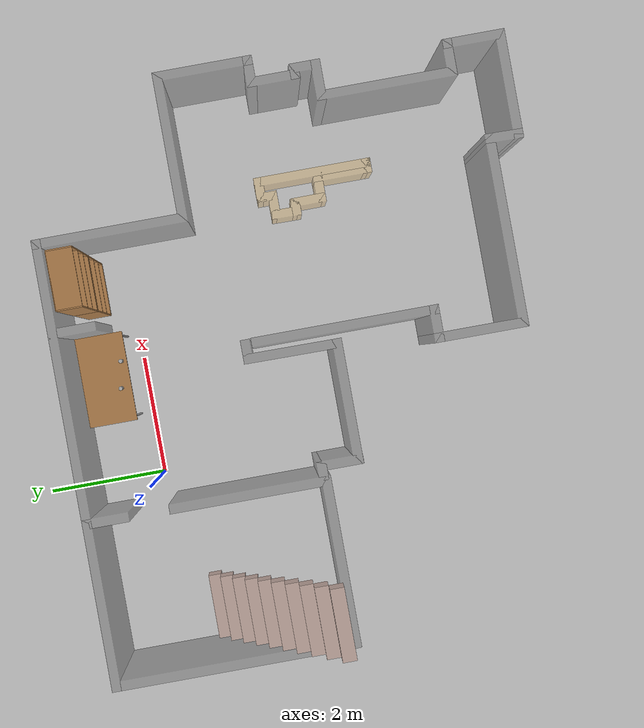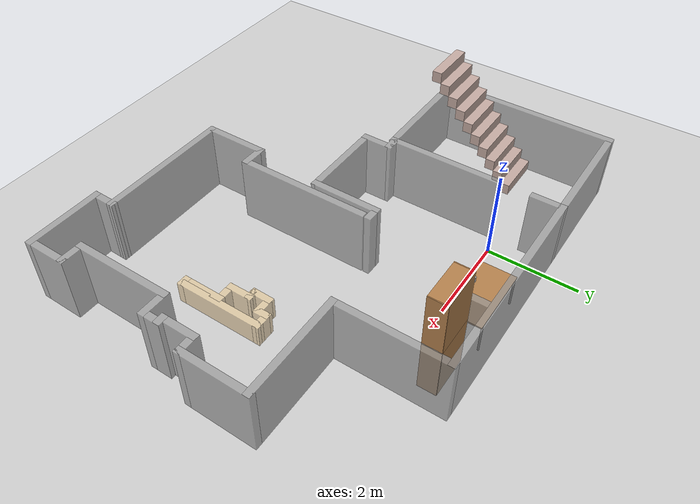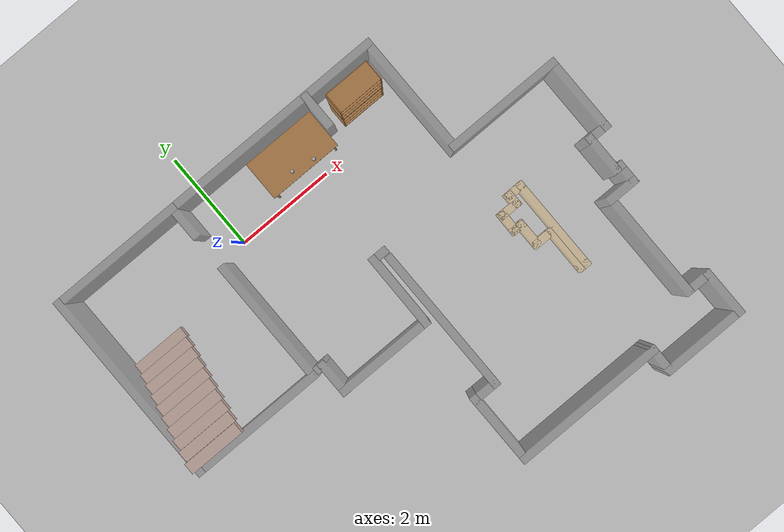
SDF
<sdf version="1.4">
 <world name="default">
  <model name="ground_plane">
   <static>1</static>
   <link name="link">
    <collision name="collision">
     <geometry><plane><normal>0 0 1</normal><size>100 100</size></plane></geometry>
     <surface><friction><ode><mu>100</mu><mu2>50</mu2></ode></friction></surface>
    </collision>
    <visual name="visual">
     <cast_shadows>0</cast_shadows>
     <geometry><plane><normal>0 0 1</normal><size>100 100</size></plane></geometry>
     <material>
      <script><uri>file://media/materials/scripts/gazebo.material</uri><name>Gazebo/Grey</name></script>
     </material>
    </visual>
    <velocity_decay><linear>0</linear><angular>0</angular></velocity_decay>
   </link>
  </model>
  <light name="sun" type="directional">
   <pose>0 0 10 0 -0 0</pose>
   <diffuse>0.8 0.8 0.8 1</diffuse>
   <specular>0.2 0.2 0.2 1</specular>
   <attenuation>
    <range>1000</range>
    <constant>0.9</constant>
    <linear>0.01</linear>
    <quadratic>0.001</quadratic>
   </attenuation>
   <direction>-0.5 0.1 -0.9</direction>
  </light>
  <model name="amtc">
   <pose>1.61504 -2.73191 0 0 -0 0</pose>
   <link name="Stairs_1">
    <visual name="Stairs_1_Visual_0">
     <pose>-4.04222 2.18385 0.125 0 -0 0</pose>
     <geometry><box><size>1.09 0.217 0.25</size></box></geometry>
     <material>
      <script><uri>file://media/materials/scripts/gazebo.material</uri><name>Gazebo/Grey</name></script>
      <ambient>0.760784 0.662745 0.627451 1</ambient>
     </material>
    </visual>
    <collision name="Stairs_1_Collision_0">
     <geometry><box><size>1.09 0.217 0.25</size></box></geometry>
     <pose>-4.04222 2.18385 0.125 0 -0 0</pose>
    </collision>
    <visual name="Stairs_1_Visual_1">
     <pose>-4.04222 1.96685 0.375 0 -0 0</pose>
     <geometry><box><size>1.09 0.217 0.25</size></box></geometry>
     <material>
      <script><uri>file://media/materials/scripts/gazebo.material</uri><name>Gazebo/Grey</name></script>
      <ambient>0.760784 0.662745 0.627451 1</ambient>
     </material>
    </visual>
    <collision name="Stairs_1_Collision_1">
     <geometry><box><size>1.09 0.217 0.25</size></box></geometry>
     <pose>-4.04222 1.96685 0.375 0 -0 0</pose>
    </collision>
    <visual name="Stairs_1_Visual_2">
     <pose>-4.04222 1.74985 0.625 0 -0 0</pose>
     <geometry><box><size>1.09 0.217 0.25</size></box></geometry>
     <material>
      <script><uri>file://media/materials/scripts/gazebo.material</uri><name>Gazebo/Grey</name></script>
      <ambient>0.760784 0.662745 0.627451 1</ambient>
     </material>
    </visual>
    <collision name="Stairs_1_Collision_2">
     <geometry><box><size>1.09 0.217 0.25</size></box></geometry>
     <pose>-4.04222 1.74985 0.625 0 -0 0</pose>
    </collision>
    <visual name="Stairs_1_Visual_3">
     <pose>-4.04222 1.53285 0.875 0 -0 0</pose>
     <geometry><box><size>1.09 0.217 0.25</size></box></geometry>
     <material>
      <script><uri>file://media/materials/scripts/gazebo.material</uri><name>Gazebo/Grey</name></script>
      <ambient>0.760784 0.662745 0.627451 1</ambient>
     </material>
    </visual>
    <collision name="Stairs_1_Collision_3">
     <geometry><box><size>1.09 0.217 0.25</size></box></geometry>
     <pose>-4.04222 1.53285 0.875 0 -0 0</pose>
    </collision>
    <visual name="Stairs_1_Visual_4">
     <pose>-4.04222 1.31585 1.125 0 -0 0</pose>
     <geometry><box><size>1.09 0.217 0.25</size></box></geometry>
     <material>
      <script><uri>file://media/materials/scripts/gazebo.material</uri><name>Gazebo/Grey</name></script>
      <ambient>0.760784 0.662745 0.627451 1</ambient>
     </material>
    </visual>
    <collision name="Stairs_1_Collision_4">
     <geometry><box><size>1.09 0.217 0.25</size></box></geometry>
     <pose>-4.04222 1.31585 1.125 0 -0 0</pose>
    </collision>
    <visual name="Stairs_1_Visual_5">
     <pose>-4.04222 1.09885 1.375 0 -0 0</pose>
     <geometry><box><size>1.09 0.217 0.25</size></box></geometry>
     <material>
      <script><uri>file://media/materials/scripts/gazebo.material</uri><name>Gazebo/Grey</name></script>
      <ambient>0.760784 0.662745 0.627451 1</ambient>
     </material>
    </visual>
    <collision name="Stairs_1_Collision_5">
     <geometry><box><size>1.09 0.217 0.25</size></box></geometry>
     <pose>-4.04222 1.09885 1.375 0 -0 0</pose>
    </collision>
    <visual name="Stairs_1_Visual_6">
     <pose>-4.04222 0.88185 1.625 0 -0 0</pose>
     <geometry><box><size>1.09 0.217 0.25</size></box></geometry>
     <material>
      <script><uri>file://media/materials/scripts/gazebo.material</uri><name>Gazebo/Grey</name></script>
      <ambient>0.760784 0.662745 0.627451 1</ambient>
     </material>
    </visual>
    <collision name="Stairs_1_Collision_6">
     <geometry><box><size>1.09 0.217 0.25</size></box></geometry>
     <pose>-4.04222 0.88185 1.625 0 -0 0</pose>
    </collision>
    <visual name="Stairs_1_Visual_7">
     <pose>-4.04222 0.66485 1.875 0 -0 0</pose>
     <geometry><box><size>1.09 0.217 0.25</size></box></geometry>
     <material>
      <script><uri>file://media/materials/scripts/gazebo.material</uri><name>Gazebo/Grey</name></script>
      <ambient>0.760784 0.662745 0.627451 1</ambient>
     </material>
    </visual>
    <collision name="Stairs_1_Collision_7">
     <geometry><box><size>1.09 0.217 0.25</size></box></geometry>
     <pose>-4.04222 0.66485 1.875 0 -0 0</pose>
    </collision>
    <visual name="Stairs_1_Visual_8">
     <pose>-4.04222 0.44785 2.125 0 -0 0</pose>
     <geometry><box><size>1.09 0.217 0.25</size></box></geometry>
     <material>
      <script><uri>file://media/materials/scripts/gazebo.material</uri><name>Gazebo/Grey</name></script>
      <ambient>0.760784 0.662745 0.627451 1</ambient>
     </material>
    </visual>
    <collision name="Stairs_1_Collision_8">
     <geometry><box><size>1.09 0.217 0.25</size></box></geometry>
     <pose>-4.04222 0.44785 2.125 0 -0 0</pose>
    </collision>
    <visual name="Stairs_1_Visual_9">
     <pose>-4.04222 0.23085 2.375 0 -0 0</pose>
     <geometry><box><size>1.09 0.217 0.25</size></box></geometry>
     <material>
      <script><uri>file://media/materials/scripts/gazebo.material</uri><name>Gazebo/Grey</name></script>
      <ambient>0.760784 0.662745 0.627451 1</ambient>
     </material>
    </visual>
    <collision name="Stairs_1_Collision_9">
     <geometry><box><size>1.09 0.217 0.25</size></box></geometry>
     <pose>-4.04222 0.23085 2.375 0 -0 0</pose>
    </collision>
    <velocity_decay><linear>0</linear><angular>0</angular></velocity_decay>
   </link>
   <link name="Wall_0">
    <collision name="Wall_0_Collision">
     <geometry><box><size>4 0.15 1.5</size></box></geometry>
     <pose>0 0 0.75 0 -0 0</pose>
    </collision>
    <visual name="Wall_0_Visual">
     <transparency>0.3</transparency>
     <pose>0 0 0.75 0 -0 0</pose>
     <geometry><box><size>4 0.15 1.5</size></box></geometry>
     <material>
      <script><uri>file://media/materials/scripts/gazebo.material</uri><name>Gazebo/Grey</name></script>
      <ambient>1 1 1 1</ambient>
     </material>
    </visual>
    <pose>-4.67488 1.97557 0 0 0 -1.5708</pose>
    <velocity_decay><linear>0</linear><angular>0</angular></velocity_decay>
   </link>
   <link name="Wall_1">
    <collision name="Wall_1_Collision">
     <geometry><box><size>2.75031 0.15 1.5</size></box></geometry>
     <pose>0 0 0.75 0 -0 0</pose>
    </collision>
    <visual name="Wall_1_Visual">
     <transparency>0.3</transparency>
     <pose>0 0 0.75 0 -0 0</pose>
     <geometry><box><size>2.75031 0.15 1.5</size></box></geometry>
     <material>
      <script><uri>file://media/materials/scripts/gazebo.material</uri><name>Gazebo/Grey</name></script>
      <ambient>1 1 1 1</ambient>
     </material>
    </visual>
    <pose>-3.37488 0.052065 0 0 -0 0.001154</pose>
    <velocity_decay><linear>0</linear><angular>0</angular></velocity_decay>
   </link>
   <link name="Wall_10">
    <collision name="Wall_10_Collision">
     <geometry><box><size>2.41 0.15 1.5</size></box></geometry>
     <pose>0 0 0.75 0 -0 0</pose>
    </collision>
    <visual name="Wall_10_Visual">
     <transparency>0.3</transparency>
     <pose>0 0 0.75 0 -0 0</pose>
     <geometry><box><size>2.41 0.15 1.5</size></box></geometry>
     <material>
      <script><uri>file://media/materials/scripts/gazebo.material</uri><name>Gazebo/Grey</name></script>
      <ambient>1 1 1 1</ambient>
     </material>
    </visual>
    <pose>3.54512 1.55056 0 0 -0 0</pose>
    <velocity_decay><linear>0</linear><angular>0</angular></velocity_decay>
   </link>
   <link name="Wall_12">
    <collision name="Wall_12_Collision">
     <geometry><box><size>1.6 0.15 1.5</size></box></geometry>
     <pose>0 0 0.75 0 -0 0</pose>
    </collision>
    <visual name="Wall_12_Visual">
     <transparency>0.3</transparency>
     <pose>0 0 0.75 0 -0 0</pose>
     <geometry><box><size>1.6 0.15 1.5</size></box></geometry>
     <material>
      <script><uri>file://media/materials/scripts/gazebo.material</uri><name>Gazebo/Grey</name></script>
      <ambient>1 1 1 1</ambient>
     </material>
    </visual>
    <pose>4.67512 0.825565 0 0 0 -1.5708</pose>
    <velocity_decay><linear>0</linear><angular>0</angular></velocity_decay>
   </link>
   <link name="Wall_14">
    <collision name="Wall_14_Collision">
     <geometry><box><size>0.5 0.15 1.5</size></box></geometry>
     <pose>0 0 0.75 0 -0 0</pose>
    </collision>
    <visual name="Wall_14_Visual">
     <transparency>0.3</transparency>
     <pose>0 0 0.75 0 -0 0</pose>
     <geometry><box><size>0.5 0.15 1.5</size></box></geometry>
     <material>
      <script><uri>file://media/materials/scripts/gazebo.material</uri><name>Gazebo/Grey</name></script>
      <ambient>1 1 1 1</ambient>
     </material>
    </visual>
    <pose>4.50012 0.100565 0 0 -0 3.14159</pose>
    <velocity_decay><linear>0</linear><angular>0</angular></velocity_decay>
   </link>
   <link name="Wall_15">
    <collision name="Wall_15_Collision">
     <geometry><box><size>0.85 0.15 1.5</size></box></geometry>
     <pose>0 0 0.75 0 -0 0</pose>
    </collision>
    <visual name="Wall_15_Visual">
     <transparency>0.3</transparency>
     <pose>0 0 0.75 0 -0 0</pose>
     <geometry><box><size>0.85 0.15 1.5</size></box></geometry>
     <material>
      <script><uri>file://media/materials/scripts/gazebo.material</uri><name>Gazebo/Grey</name></script>
      <ambient>1 1 1 1</ambient>
     </material>
    </visual>
    <pose>4.32512 -0.249435 0 0 0 -1.5708</pose>
    <velocity_decay><linear>0</linear><angular>0</angular></velocity_decay>
   </link>
   <link name="Wall_17">
    <collision name="Wall_17_Collision">
     <geometry><box><size>0.25 0.15 1.5</size></box></geometry>
     <pose>0 0 0.75 0 -0 0</pose>
    </collision>
    <visual name="Wall_17_Visual">
     <transparency>0.3</transparency>
     <pose>0 0 0.75 0 -0 0</pose>
     <geometry><box><size>0.25 0.15 1.5</size></box></geometry>
     <material>
      <script><uri>file://media/materials/scripts/gazebo.material</uri><name>Gazebo/Grey</name></script>
      <ambient>1 1 1 1</ambient>
     </material>
    </visual>
    <pose>4.37512 -0.599435 0 0 -0 0</pose>
    <velocity_decay><linear>0</linear><angular>0</angular></velocity_decay>
   </link>
   <link name="Wall_18">
    <collision name="Wall_18_Collision">
     <geometry><box><size>0.5 0.15 1.5</size></box></geometry>
     <pose>0 0 0.75 0 -0 0</pose>
    </collision>
    <visual name="Wall_18_Visual">
     <transparency>0.3</transparency>
     <pose>0 0 0.75 0 -0 0</pose>
     <geometry><box><size>0.5 0.15 1.5</size></box></geometry>
     <material>
      <script><uri>file://media/materials/scripts/gazebo.material</uri><name>Gazebo/Grey</name></script>
      <ambient>1 1 1 1</ambient>
     </material>
    </visual>
    <pose>4.42512 -0.774435 0 0 0 -1.5708</pose>
    <velocity_decay><linear>0</linear><angular>0</angular></velocity_decay>
   </link>
   <link name="Wall_19">
    <collision name="Wall_19_Collision">
     <geometry><box><size>0.65 0.15 1.5</size></box></geometry>
     <pose>0 0 0.75 0 -0 0</pose>
    </collision>
    <visual name="Wall_19_Visual">
     <transparency>0.3</transparency>
     <pose>0 0 0.75 0 -0 0</pose>
     <geometry><box><size>0.65 0.15 1.5</size></box></geometry>
     <material>
      <script><uri>file://media/materials/scripts/gazebo.material</uri><name>Gazebo/Grey</name></script>
      <ambient>1 1 1 1</ambient>
     </material>
    </visual>
    <pose>4.17512 -0.949435 0 0 -0 3.14159</pose>
    <velocity_decay><linear>0</linear><angular>0</angular></velocity_decay>
   </link>
   <link name="Wall_2">
    <collision name="Wall_2_Collision">
     <geometry><box><size>2.6 0.15 1.5</size></box></geometry>
     <pose>0 0 0.75 0 -0 0</pose>
    </collision>
    <visual name="Wall_2_Visual">
     <transparency>0.3</transparency>
     <pose>0 0 0.75 0 -0 0</pose>
     <geometry><box><size>2.6 0.15 1.5</size></box></geometry>
     <material>
      <script><uri>file://media/materials/scripts/gazebo.material</uri><name>Gazebo/Grey</name></script>
      <ambient>1 1 1 1</ambient>
     </material>
    </visual>
    <pose>-2.07488 1.27856 0 0 -0 1.5708</pose>
    <velocity_decay><linear>0</linear><angular>0</angular></velocity_decay>
   </link>
   <link name="Wall_21">
    <collision name="Wall_21_Collision">
     <geometry><box><size>2.25 0.15 1.5</size></box></geometry>
     <pose>0 0 0.75 0 -0 0</pose>
    </collision>
    <visual name="Wall_21_Visual">
     <transparency>0.3</transparency>
     <pose>0 0 0.75 0 -0 0</pose>
     <geometry><box><size>2.25 0.15 1.5</size></box></geometry>
     <material>
      <script><uri>file://media/materials/scripts/gazebo.material</uri><name>Gazebo/Grey</name></script>
      <ambient>1 1 1 1</ambient>
     </material>
    </visual>
    <pose>3.92512 -1.99944 0 0 0 -1.5708</pose>
    <velocity_decay><linear>0</linear><angular>0</angular></velocity_decay>
   </link>
   <link name="Wall_22">
    <collision name="Wall_22_Collision">
     <geometry><box><size>0.6 0.15 1.5</size></box></geometry>
     <pose>0 0 0.75 0 -0 0</pose>
    </collision>
    <visual name="Wall_22_Visual">
     <transparency>0.3</transparency>
     <pose>0 0 0.75 0 -0 0</pose>
     <geometry><box><size>0.6 0.15 1.5</size></box></geometry>
     <material>
      <script><uri>file://media/materials/scripts/gazebo.material</uri><name>Gazebo/Grey</name></script>
      <ambient>1 1 1 1</ambient>
     </material>
    </visual>
    <pose>4.15012 -3.04943 0 0 -0 0</pose>
    <velocity_decay><linear>0</linear><angular>0</angular></velocity_decay>
   </link>
   <link name="Wall_24">
    <collision name="Wall_24_Collision">
     <geometry><box><size>1 0.15 1.5</size></box></geometry>
     <pose>0 0 0.75 0 -0 0</pose>
    </collision>
    <visual name="Wall_24_Visual">
     <transparency>0.3</transparency>
     <pose>0 0 0.75 0 -0 0</pose>
     <geometry><box><size>1 0.15 1.5</size></box></geometry>
     <material>
      <script><uri>file://media/materials/scripts/gazebo.material</uri><name>Gazebo/Grey</name></script>
      <ambient>1 1 1 1</ambient>
     </material>
    </visual>
    <pose>4.37512 -3.47444 0 0 0 -1.5708</pose>
    <velocity_decay><linear>0</linear><angular>0</angular></velocity_decay>
   </link>
   <link name="Wall_25">
    <collision name="Wall_25_Collision">
     <geometry><box><size>1.75 0.15 1.5</size></box></geometry>
     <pose>0 0 0.75 0 -0 0</pose>
    </collision>
    <visual name="Wall_25_Visual">
     <transparency>0.3</transparency>
     <pose>0 0 0.75 0 -0 0</pose>
     <geometry><box><size>1.75 0.15 1.5</size></box></geometry>
     <material>
      <script><uri>file://media/materials/scripts/gazebo.material</uri><name>Gazebo/Grey</name></script>
      <ambient>1 1 1 1</ambient>
     </material>
    </visual>
    <pose>3.57512 -3.89943 0 0 -0 3.14159</pose>
    <velocity_decay><linear>0</linear><angular>0</angular></velocity_decay>
   </link>
   <link name="Wall_26">
    <collision name="Wall_26_Collision">
     <geometry><box><size>0.6 0.15 1.5</size></box></geometry>
     <pose>0 0 0.75 0 -0 0</pose>
    </collision>
    <visual name="Wall_26_Visual">
     <transparency>0.3</transparency>
     <pose>0 0 0.75 0 -0 0</pose>
     <geometry><box><size>0.6 0.15 1.5</size></box></geometry>
     <material>
      <script><uri>file://media/materials/scripts/gazebo.material</uri><name>Gazebo/Grey</name></script>
      <ambient>1 1 1 1</ambient>
     </material>
    </visual>
    <pose>2.77862 -3.67443 0 0 -0 1.55524</pose>
    <velocity_decay><linear>0</linear><angular>0</angular></velocity_decay>
   </link>
   <link name="Wall_28">
    <collision name="Wall_28_Collision">
     <geometry><box><size>3.1 0.15 1.5</size></box></geometry>
     <pose>0 0 0.75 0 -0 0</pose>
    </collision>
    <visual name="Wall_28_Visual">
     <transparency>0.3</transparency>
     <pose>0 0 0.75 0 -0 0</pose>
     <geometry><box><size>3.1 0.15 1.5</size></box></geometry>
     <material>
      <script><uri>file://media/materials/scripts/gazebo.material</uri><name>Gazebo/Grey</name></script>
      <ambient>1 1 1 1</ambient>
     </material>
    </visual>
    <pose>1.30712 -3.44943 0 0 -0 3.14159</pose>
    <velocity_decay><linear>0</linear><angular>0</angular></velocity_decay>
   </link>
   <link name="Wall_30">
    <collision name="Wall_30_Collision">
     <geometry><box><size>1.5 0.15 1.5</size></box></geometry>
     <pose>0 0 0.75 0 -0 0</pose>
    </collision>
    <visual name="Wall_30_Visual">
     <transparency>0.3</transparency>
     <pose>0 0 0.75 0 -0 0</pose>
     <geometry><box><size>1.5 0.15 1.5</size></box></geometry>
     <material>
      <script><uri>file://media/materials/scripts/gazebo.material</uri><name>Gazebo/Grey</name></script>
      <ambient>1 1 1 1</ambient>
     </material>
    </visual>
    <pose>-0.167881 -2.77443 0 0 -0 1.5708</pose>
    <velocity_decay><linear>0</linear><angular>0</angular></velocity_decay>
   </link>
   <link name="Wall_32">
    <collision name="Wall_32_Collision">
     <geometry><box><size>0.6 0.15 1.5</size></box></geometry>
     <pose>0 0 0.75 0 -0 0</pose>
    </collision>
    <visual name="Wall_32_Visual">
     <transparency>0.3</transparency>
     <pose>0 0 0.75 0 -0 0</pose>
     <geometry><box><size>0.6 0.15 1.5</size></box></geometry>
     <material>
      <script><uri>file://media/materials/scripts/gazebo.material</uri><name>Gazebo/Grey</name></script>
      <ambient>1 1 1 1</ambient>
     </material>
    </visual>
    <pose>0.057119 -2.09944 0 0 -0 0</pose>
    <velocity_decay><linear>0</linear><angular>0</angular></velocity_decay>
   </link>
   <link name="Wall_37">
    <collision name="Wall_37_Collision">
     <geometry><box><size>3.01 0.15 1.5</size></box></geometry>
     <pose>0 0 0.75 0 -0 0</pose>
    </collision>
    <visual name="Wall_37_Visual">
     <transparency>0.3</transparency>
     <pose>0 0 0.75 0 -0 0</pose>
     <geometry><box><size>3.01 0.15 1.5</size></box></geometry>
     <material>
      <script><uri>file://media/materials/scripts/gazebo.material</uri><name>Gazebo/Grey</name></script>
      <ambient>1 1 1 1</ambient>
     </material>
    </visual>
    <pose>0.282119 -0.669435 0 0 -0 1.5708</pose>
    <velocity_decay><linear>0</linear><angular>0</angular></velocity_decay>
   </link>
   <link name="Wall_4">
    <collision name="Wall_4_Collision">
     <geometry><box><size>2.75 0.15 1.5</size></box></geometry>
     <pose>0 0 0.75 0 -0 0</pose>
    </collision>
    <visual name="Wall_4_Visual">
     <transparency>0.3</transparency>
     <pose>0 0 0.75 0 -0 0</pose>
     <geometry><box><size>2.75 0.15 1.5</size></box></geometry>
     <material>
      <script><uri>file://media/materials/scripts/gazebo.material</uri><name>Gazebo/Grey</name></script>
      <ambient>1 1 1 1</ambient>
     </material>
    </visual>
    <pose>-3.37488 3.90056 0 0 -0 0</pose>
    <velocity_decay><linear>0</linear><angular>0</angular></velocity_decay>
   </link>
   <link name="Wall_48">
    <collision name="Wall_48_Collision">
     <pose>0.28 0 0.75 0 -0 0</pose>
     <geometry><box><size>0.25 0.15 1.5</size></box></geometry>
    </collision>
    <visual name="Wall_48_Visual">
     <transparency>0.3</transparency>
     <pose>0.28 0 0.75 0 -0 0</pose>
     <geometry><box><size>0.25 0.15 1.5</size></box></geometry>
     <material>
      <script><uri>file://media/materials/scripts/gazebo.material</uri><name>Gazebo/Grey</name></script>
      <ambient>1 1 1 1</ambient>
     </material>
    </visual>
    <pose>0.503119 0.930565 0 0 -0 3.14159</pose>
    <velocity_decay><linear>0</linear><angular>0</angular></velocity_decay>
   </link>
   <link name="Wall_49">
    <collision name="Wall_49_Collision">
     <geometry><box><size>1.58004 0.15 1.5</size></box></geometry>
     <pose>0 0 0.75 0 -0 0</pose>
    </collision>
    <visual name="Wall_49_Visual">
     <transparency>0.3</transparency>
     <pose>0 0 0.75 0 -0 0</pose>
     <geometry><box><size>1.58004 0.15 1.5</size></box></geometry>
     <material>
      <script><uri>file://media/materials/scripts/gazebo.material</uri><name>Gazebo/Grey</name></script>
      <ambient>1 1 1 1</ambient>
     </material>
    </visual>
    <pose>0.037119 0.215565 0 0 0 -1.57779</pose>
    <velocity_decay><linear>0</linear><angular>0</angular></velocity_decay>
   </link>
   <link name="Wall_5">
    <collision name="Wall_5_Collision">
     <geometry><box><size>0.75 0.15 1.5</size></box></geometry>
     <pose>0 0 0.75 0 -0 0</pose>
    </collision>
    <visual name="Wall_5_Visual">
     <transparency>0.3</transparency>
     <pose>0 0 0.75 0 -0 0</pose>
     <geometry><box><size>0.75 0.15 1.5</size></box></geometry>
     <material>
      <script><uri>file://media/materials/scripts/gazebo.material</uri><name>Gazebo/Grey</name></script>
      <ambient>1 1 1 1</ambient>
     </material>
    </visual>
    <pose>-2.07488 3.60057 0 0 0 -1.5708</pose>
    <velocity_decay><linear>0</linear><angular>0</angular></velocity_decay>
   </link>
   <link name="Wall_50">
    <collision name="Wall_50_Collision">
     <geometry><box><size>2.01321 0.15 1.5</size></box></geometry>
     <pose>0 0 0.75 0 -0 0</pose>
    </collision>
    <visual name="Wall_50_Visual">
     <transparency>0.3</transparency>
     <pose>0 0 0.75 0 -0 0</pose>
     <geometry><box><size>2.01321 0.15 1.5</size></box></geometry>
     <material>
      <script><uri>file://media/materials/scripts/gazebo.material</uri><name>Gazebo/Grey</name></script>
      <ambient>1 1 1 1</ambient>
     </material>
    </visual>
    <pose>-0.899329 -0.499435 0 0 -0 3.14159</pose>
    <velocity_decay><linear>0</linear><angular>0</angular></velocity_decay>
   </link>
   <link name="Wall_51">
    <collision name="Wall_51_Collision">
     <geometry><box><size>0.741002 0.15 1.5</size></box></geometry>
     <pose>0 0 0.75 0 -0 0</pose>
    </collision>
    <visual name="Wall_51_Visual">
     <transparency>0.3</transparency>
     <pose>0 0 0.75 0 -0 0</pose>
     <geometry><box><size>0.741002 0.15 1.5</size></box></geometry>
     <material>
      <script><uri>file://media/materials/scripts/gazebo.material</uri><name>Gazebo/Grey</name></script>
      <ambient>1 1 1 1</ambient>
     </material>
    </visual>
    <pose>-1.83083 -0.208085 0 0 -0 1.57097</pose>
    <velocity_decay><linear>0</linear><angular>0</angular></velocity_decay>
   </link>
   <link name="Wall_54">
    <collision name="Wall_54_Collision">
     <geometry><box><size>0.3 0.15 1.5</size></box></geometry>
     <pose>0 0 0.75 0 -0 0</pose>
    </collision>
    <visual name="Wall_54_Visual">
     <transparency>0.3</transparency>
     <pose>0 0 0.75 0 -0 0</pose>
     <geometry><box><size>0.3 0.15 1.5</size></box></geometry>
     <material>
      <script><uri>file://media/materials/scripts/gazebo.material</uri><name>Gazebo/Grey</name></script>
      <ambient>1 1 1 1</ambient>
     </material>
    </visual>
    <pose>-1.90588 0.087565 0 0 -0 3.14159</pose>
    <velocity_decay><linear>0</linear><angular>0</angular></velocity_decay>
   </link>
   <link name="Wall_56">
    <collision name="Wall_56_Collision">
     <geometry><box><size>0.75 0.15 1.5</size></box></geometry>
     <pose>0 0 0.75 0 -0 0</pose>
    </collision>
    <visual name="Wall_56_Visual">
     <transparency>0.3</transparency>
     <pose>0 0 0.75 0 -0 0</pose>
     <geometry><box><size>0.75 0.15 1.5</size></box></geometry>
     <material>
      <script><uri>file://media/materials/scripts/gazebo.material</uri><name>Gazebo/Grey</name></script>
      <ambient>1 1 1 1</ambient>
     </material>
    </visual>
    <pose>0.980006 3.57829 0 0 0 -1.5708</pose>
    <velocity_decay><linear>0</linear><angular>0</angular></velocity_decay>
   </link>
   <link name="Wall_59">
    <collision name="Wall_59_Collision">
     <geometry><box><size>2 0.15 0.5</size></box></geometry>
     <pose>0 0 0.25 0 -0 0</pose>
    </collision>
    <visual name="Wall_59_Visual">
     <transparency>0.3</transparency>
     <pose>0 0 0.25 0 -0 0</pose>
     <geometry><box><size>2 0.15 0.5</size></box></geometry>
     <material>
      <script><uri>file://media/materials/scripts/gazebo.material</uri><name>Gazebo/Grey</name></script>
      <ambient>0.921569 0.807843 0.615686 1</ambient>
     </material>
    </visual>
    <pose>2.95912 -0.680435 0 0 0 -1.5708</pose>
    <velocity_decay><linear>0</linear><angular>0</angular></velocity_decay>
   </link>
   <link name="Wall_60">
    <collision name="Wall_60_Collision">
     <geometry><box><size>0.25 0.15 0.5</size></box></geometry>
     <pose>0 0 0.25 0 -0 0</pose>
    </collision>
    <visual name="Wall_60_Visual">
     <transparency>0.3</transparency>
     <pose>0 0 0.25 0 -0 0</pose>
     <geometry><box><size>0.25 0.15 0.5</size></box></geometry>
     <material>
      <script><uri>file://media/materials/scripts/gazebo.material</uri><name>Gazebo/Grey</name></script>
      <ambient>0.921569 0.807843 0.615686 1</ambient>
     </material>
    </visual>
    <pose>2.90912 -1.60543 0 0 -0 3.14159</pose>
    <velocity_decay><linear>0</linear><angular>0</angular></velocity_decay>
   </link>
   <link name="Wall_61">
    <collision name="Wall_61_Collision">
     <geometry><box><size>0.997482 0.15 0.5</size></box></geometry>
     <pose>0 0 0.25 0 -0 0</pose>
    </collision>
    <visual name="Wall_61_Visual">
     <transparency>0.3</transparency>
     <pose>0 0 0.25 0 -0 0</pose>
     <geometry><box><size>0.997482 0.15 0.5</size></box></geometry>
     <material>
      <script><uri>file://media/materials/scripts/gazebo.material</uri><name>Gazebo/Grey</name></script>
      <ambient>0.921569 0.807843 0.615686 1</ambient>
     </material>
    </visual>
    <pose>2.86062 -1.18193 0 0 -0 1.56725</pose>
    <velocity_decay><linear>0</linear><angular>0</angular></velocity_decay>
   </link>
   <link name="Wall_62">
    <collision name="Wall_62_Collision">
     <geometry><box><size>0.5 0.15 0.5</size></box></geometry>
     <pose>0 0 0.25 0 -0 0</pose>
    </collision>
    <visual name="Wall_62_Visual">
     <transparency>0.3</transparency>
     <pose>0 0 0.25 0 -0 0</pose>
     <geometry><box><size>0.5 0.15 0.5</size></box></geometry>
     <material>
      <script><uri>file://media/materials/scripts/gazebo.material</uri><name>Gazebo/Grey</name></script>
      <ambient>0.921569 0.807843 0.615686 1</ambient>
     </material>
    </visual>
    <pose>2.68712 -0.758435 0 0 -0 3.14159</pose>
    <velocity_decay><linear>0</linear><angular>0</angular></velocity_decay>
   </link>
   <link name="Wall_63">
    <collision name="Wall_63_Collision">
     <geometry><box><size>0.60301 0.15 0.5</size></box></geometry>
     <pose>0 0 0.25 0 -0 0</pose>
    </collision>
    <visual name="Wall_63_Visual">
     <transparency>0.3</transparency>
     <pose>0 0 0.25 0 -0 0</pose>
     <geometry><box><size>0.60301 0.15 0.5</size></box></geometry>
     <material>
      <script><uri>file://media/materials/scripts/gazebo.material</uri><name>Gazebo/Grey</name></script>
      <ambient>0.921569 0.807843 0.615686 1</ambient>
     </material>
    </visual>
    <pose>2.51062 -0.531935 0 0 -0 1.57742</pose>
    <velocity_decay><linear>0</linear><angular>0</angular></velocity_decay>
   </link>
   <link name="Wall_7">
    <collision name="Wall_7_Collision">
     <geometry><box><size>4.64 0.15 1.5</size></box></geometry>
     <pose>0 0 0.75 0 -0 0</pose>
    </collision>
    <visual name="Wall_7_Visual">
     <transparency>0.3</transparency>
     <pose>0 0 0.75 0 -0 0</pose>
     <geometry><box><size>4.64 0.15 1.5</size></box></geometry>
     <material>
      <script><uri>file://media/materials/scripts/gazebo.material</uri><name>Gazebo/Grey</name></script>
      <ambient>1 1 1 1</ambient>
     </material>
    </visual>
    <pose>0.170119 3.90056 0 0 -0 0</pose>
    <velocity_decay><linear>0</linear><angular>0</angular></velocity_decay>
   </link>
   <link name="Wall_73">
    <collision name="Wall_73_Collision">
     <geometry><box><size>0.297 0.15 0.5</size></box></geometry>
     <pose>0 0 0.25 0 -0 0</pose>
    </collision>
    <visual name="Wall_73_Visual">
     <transparency>0.3</transparency>
     <pose>0 0 0.25 0 -0 0</pose>
     <geometry><box><size>0.297 0.15 0.5</size></box></geometry>
     <material>
      <script><uri>file://media/materials/scripts/gazebo.material</uri><name>Gazebo/Grey</name></script>
      <ambient>0.921569 0.807843 0.615686 1</ambient>
     </material>
    </visual>
    <pose>2.43562 -0.305435 0 0 -0 3.14159</pose>
    <velocity_decay><linear>0</linear><angular>0</angular></velocity_decay>
   </link>
   <link name="Wall_78">
    <collision name="Wall_78_Collision">
     <geometry><box><size>0.474 0.15 0.5</size></box></geometry>
     <pose>0 0 0.25 0 -0 0</pose>
    </collision>
    <visual name="Wall_78_Visual">
     <transparency>0.3</transparency>
     <pose>0 0 0.25 0 -0 0</pose>
     <geometry><box><size>0.474 0.15 0.5</size></box></geometry>
     <material>
      <script><uri>file://media/materials/scripts/gazebo.material</uri><name>Gazebo/Grey</name></script>
      <ambient>0.921569 0.807843 0.615686 1</ambient>
     </material>
    </visual>
    <pose>2.53012 0.046565 0 0 -0 0</pose>
    <velocity_decay><linear>0</linear><angular>0</angular></velocity_decay>
   </link>
   <link name="Wall_79">
    <collision name="Wall_79_Collision">
     <geometry><box><size>0.344 0.15 0.5</size></box></geometry>
     <pose>0 0 0.25 0 -0 0</pose>
    </collision>
    <visual name="Wall_79_Visual">
     <transparency>0.3</transparency>
     <pose>0 0 0.25 0 -0 0</pose>
     <geometry><box><size>0.344 0.15 0.5</size></box></geometry>
     <material>
      <script><uri>file://media/materials/scripts/gazebo.material</uri><name>Gazebo/Grey</name></script>
      <ambient>0.921569 0.807843 0.615686 1</ambient>
     </material>
    </visual>
    <pose>2.69212 0.143565 0 0 -0 1.5708</pose>
    <velocity_decay><linear>0</linear><angular>0</angular></velocity_decay>
   </link>
   <link name="Wall_82">
    <collision name="Wall_82_Collision">
     <geometry><box><size>0.417479 0.15 0.5</size></box></geometry>
     <pose>0 0 0.25 0 -0 0</pose>
    </collision>
    <visual name="Wall_82_Visual">
     <transparency>0.3</transparency>
     <pose>0 0 0.25 0 -0 0</pose>
     <geometry><box><size>0.417479 0.15 0.5</size></box></geometry>
     <material>
      <script><uri>file://media/materials/scripts/gazebo.material</uri><name>Gazebo/Grey</name></script>
      <ambient>0.921569 0.807843 0.615686 1</ambient>
     </material>
    </visual>
    <pose>2.82562 0.242565 0 0 -0 0.01498</pose>
    <velocity_decay><linear>0</linear><angular>0</angular></velocity_decay>
   </link>
   <link name="Wall_84">
    <collision name="Wall_84_Collision">
     <geometry><box><size>0.502051 0.15 0.5</size></box></geometry>
     <pose>0 0 0.25 0 -0 0</pose>
    </collision>
    <visual name="Wall_84_Visual">
     <transparency>0.3</transparency>
     <pose>0 0 0.25 0 -0 0</pose>
     <geometry><box><size>0.502051 0.15 0.5</size></box></geometry>
     <material>
      <script><uri>file://media/materials/scripts/gazebo.material</uri><name>Gazebo/Grey</name></script>
      <ambient>0.921569 0.807843 0.615686 1</ambient>
     </material>
    </visual>
    <pose>2.36512 -0.129435 0 0 0 -1.58784</pose>
    <velocity_decay><linear>0</linear><angular>0</angular></velocity_decay>
   </link>
   <link name="Wall_9">
    <collision name="Wall_9_Collision">
     <geometry><box><size>2.5 0.15 1.5</size></box></geometry>
     <pose>0 0 0.75 0 -0 0</pose>
    </collision>
    <visual name="Wall_9_Visual">
     <transparency>0.3</transparency>
     <pose>0 0 0.75 0 -0 0</pose>
     <geometry><box><size>2.5 0.15 1.5</size></box></geometry>
     <material>
      <script><uri>file://media/materials/scripts/gazebo.material</uri><name>Gazebo/Grey</name></script>
      <ambient>1 1 1 1</ambient>
     </material>
    </visual>
    <pose>2.41512 2.72557 0 0 0 -1.5708</pose>
    <velocity_decay><linear>0</linear><angular>0</angular></velocity_decay>
   </link>
   <static>1</static>
  </model>
  <physics type="ode">
   <max_step_size>0.001</max_step_size>
   <real_time_factor>1</real_time_factor>
   <real_time_update_rate>1000</real_time_update_rate>
   <gravity>0 0 -9.8</gravity>
  </physics>
  <scene><ambient>0.4 0.4 0.4 1</ambient><background>0.7 0.7 0.7 1</background><shadows>1</shadows></scene>
  <spherical_coordinates>
   <surface_model>EARTH_WGS84</surface_model>
   <latitude_deg>0</latitude_deg>
   <longitude_deg>0</longitude_deg>
   <elevation>0</elevation>
   <heading_deg>0</heading_deg>
  </spherical_coordinates>
  <model name="bookshelf">
   <static>1</static>
   <link name="link">
    <inertial><mass>1</mass></inertial>
    <collision name="back">
     <pose>0 0.005 0.6 0 -0 0</pose>
     <geometry><box><size>0.9 0.01 1.2</size></box></geometry>
    </collision>
    <visual name="visual1">
     <pose>0 0.005 0.6 0 -0 0</pose>
     <geometry><box><size>0.9 0.01 1.2</size></box></geometry>
     <material>
      <script><uri>file://media/materials/scripts/gazebo.material</uri><name>Gazebo/Wood</name></script>
     </material>
    </visual>
    <collision name="left_side">
     <pose>0.45 -0.195 0.6 0 -0 0</pose>
     <geometry><box><size>0.02 0.4 1.2</size></box></geometry>
    </collision>
    <visual name="visual2">
     <pose>0.45 -0.195 0.6 0 -0 0</pose>
     <geometry><box><size>0.02 0.4 1.2</size></box></geometry>
     <material>
      <script><uri>file://media/materials/scripts/gazebo.material</uri><name>Gazebo/Wood</name></script>
     </material>
    </visual>
    <collision name="right_side">
     <pose>-0.45 -0.195 0.6 0 -0 0</pose>
     <geometry><box><size>0.02 0.4 1.2</size></box></geometry>
    </collision>
    <visual name="visual3">
     <pose>-0.45 -0.195 0.6 0 -0 0</pose>
     <geometry><box><size>0.02 0.4 1.2</size></box></geometry>
     <material>
      <script><uri>file://media/materials/scripts/gazebo.material</uri><name>Gazebo/Wood</name></script>
     </material>
    </visual>
    <collision name="bottom">
     <pose>0 -0.195 0.03 0 -0 0</pose>
     <geometry><box><size>0.88 0.4 0.06</size></box></geometry>
    </collision>
    <visual name="visual4">
     <pose>0 -0.195 0.03 0 -0 0</pose>
     <geometry><box><size>0.88 0.4 0.06</size></box></geometry>
     <material>
      <script><uri>file://media/materials/scripts/gazebo.material</uri><name>Gazebo/Wood</name></script>
     </material>
    </visual>
    <collision name="top">
     <pose>0 -0.195 1.19 0 -0 0</pose>
     <geometry><box><size>0.88 0.4 0.02</size></box></geometry>
    </collision>
    <visual name="visual5">
     <pose>0 -0.195 1.19 0 -0 0</pose>
     <geometry><box><size>0.88 0.4 0.02</size></box></geometry>
     <material>
      <script><uri>file://media/materials/scripts/gazebo.material</uri><name>Gazebo/Wood</name></script>
     </material>
    </visual>
    <collision name="low_shelf">
     <pose>0 -0.195 0.43 0 -0 0</pose>
     <geometry><box><size>0.88 0.4 0.02</size></box></geometry>
    </collision>
    <visual name="visual6">
     <pose>0 -0.195 0.43 0 -0 0</pose>
     <geometry><box><size>0.88 0.4 0.02</size></box></geometry>
     <material>
      <script><uri>file://media/materials/scripts/gazebo.material</uri><name>Gazebo/Wood</name></script>
     </material>
    </visual>
    <collision name="high_shelf">
     <pose>0 -0.195 0.8 0 -0 0</pose>
     <geometry><box><size>0.88 0.4 0.02</size></box></geometry>
    </collision>
    <visual name="visual7">
     <pose>0 -0.195 0.8 0 -0 0</pose>
     <geometry><box><size>0.88 0.4 0.02</size></box></geometry>
     <material>
      <script><uri>file://media/materials/scripts/gazebo.material</uri><name>Gazebo/Wood</name></script>
     </material>
    </visual>
    <velocity_decay><linear>0</linear><angular>0</angular></velocity_decay>
   </link>
   <pose>3.29639 0.836612 -0 0 -0 0</pose>
  </model>
  <model name="bookshelf_0">
   <static>1</static>
   <link name="link">
    <inertial><mass>1</mass></inertial>
    <collision name="back">
     <pose>0 0.005 0.6 0 -0 0</pose>
     <geometry><box><size>0.9 0.01 1.2</size></box></geometry>
    </collision>
    <visual name="visual1">
     <pose>0 0.005 0.6 0 -0 0</pose>
     <geometry><box><size>0.9 0.01 1.2</size></box></geometry>
     <material>
      <script><uri>file://media/materials/scripts/gazebo.material</uri><name>Gazebo/Wood</name></script>
     </material>
    </visual>
    <collision name="left_side">
     <pose>0.45 -0.195 0.6 0 -0 0</pose>
     <geometry><box><size>0.02 0.4 1.2</size></box></geometry>
    </collision>
    <visual name="visual2">
     <pose>0.45 -0.195 0.6 0 -0 0</pose>
     <geometry><box><size>0.02 0.4 1.2</size></box></geometry>
     <material>
      <script><uri>file://media/materials/scripts/gazebo.material</uri><name>Gazebo/Wood</name></script>
     </material>
    </visual>
    <collision name="right_side">
     <pose>-0.45 -0.195 0.6 0 -0 0</pose>
     <geometry><box><size>0.02 0.4 1.2</size></box></geometry>
    </collision>
    <visual name="visual3">
     <pose>-0.45 -0.195 0.6 0 -0 0</pose>
     <geometry><box><size>0.02 0.4 1.2</size></box></geometry>
     <material>
      <script><uri>file://media/materials/scripts/gazebo.material</uri><name>Gazebo/Wood</name></script>
     </material>
    </visual>
    <collision name="bottom">
     <pose>0 -0.195 0.03 0 -0 0</pose>
     <geometry><box><size>0.88 0.4 0.06</size></box></geometry>
    </collision>
    <visual name="visual4">
     <pose>0 -0.195 0.03 0 -0 0</pose>
     <geometry><box><size>0.88 0.4 0.06</size></box></geometry>
     <material>
      <script><uri>file://media/materials/scripts/gazebo.material</uri><name>Gazebo/Wood</name></script>
     </material>
    </visual>
    <collision name="top">
     <pose>0 -0.195 1.19 0 -0 0</pose>
     <geometry><box><size>0.88 0.4 0.02</size></box></geometry>
    </collision>
    <visual name="visual5">
     <pose>0 -0.195 1.19 0 -0 0</pose>
     <geometry><box><size>0.88 0.4 0.02</size></box></geometry>
     <material>
      <script><uri>file://media/materials/scripts/gazebo.material</uri><name>Gazebo/Wood</name></script>
     </material>
    </visual>
    <collision name="low_shelf">
     <pose>0 -0.195 0.43 0 -0 0</pose>
     <geometry><box><size>0.88 0.4 0.02</size></box></geometry>
    </collision>
    <visual name="visual6">
     <pose>0 -0.195 0.43 0 -0 0</pose>
     <geometry><box><size>0.88 0.4 0.02</size></box></geometry>
     <material>
      <script><uri>file://media/materials/scripts/gazebo.material</uri><name>Gazebo/Wood</name></script>
     </material>
    </visual>
    <collision name="high_shelf">
     <pose>0 -0.195 0.8 0 -0 0</pose>
     <geometry><box><size>0.88 0.4 0.02</size></box></geometry>
    </collision>
    <visual name="visual7">
     <pose>0 -0.195 0.8 0 -0 0</pose>
     <geometry><box><size>0.88 0.4 0.02</size></box></geometry>
     <material>
      <script><uri>file://media/materials/scripts/gazebo.material</uri><name>Gazebo/Wood</name></script>
     </material>
    </visual>
    <velocity_decay><linear>0</linear><angular>0</angular></velocity_decay>
   </link>
   <pose>3.29763 0.837487 1.20091 0 -0 0</pose>
  </model>
  <model name="table">
   <static>1</static>
   <link name="link">
    <collision name="surface">
     <pose>0 0 1 0 -0 0</pose>
     <geometry><box><size>1.5 0.8 0.03</size></box></geometry>
     <surface><friction><ode><mu>0.6</mu><mu2>0.6</mu2></ode></friction></surface>
    </collision>
    <visual name="visual1">
     <pose>0 0 1 0 -0 0</pose>
     <geometry><box><size>1.5 0.8 0.03</size></box></geometry>
     <material>
      <script><uri>file://media/materials/scripts/gazebo.material</uri><name>Gazebo/Wood</name></script>
     </material>
    </visual>
    <collision name="front_left_leg">
     <pose>0.68 0.38 0.5 0 -0 0</pose>
     <geometry><cylinder><radius>0.02</radius><length>1</length></cylinder></geometry>
    </collision>
    <visual name="front_left_leg">
     <pose>0.68 0.38 0.5 0 -0 0</pose>
     <geometry><cylinder><radius>0.02</radius><length>1</length></cylinder></geometry>
     <material>
      <script><uri>file://media/materials/scripts/gazebo.material</uri><name>Gazebo/Grey</name></script>
     </material>
    </visual>
    <collision name="front_right_leg">
     <pose>0.68 -0.38 0.5 0 -0 0</pose>
     <geometry><cylinder><radius>0.02</radius><length>1</length></cylinder></geometry>
    </collision>
    <visual name="front_right_leg">
     <pose>0.68 -0.38 0.5 0 -0 0</pose>
     <geometry><cylinder><radius>0.02</radius><length>1</length></cylinder></geometry>
     <material>
      <script><uri>file://media/materials/scripts/gazebo.material</uri><name>Gazebo/Grey</name></script>
     </material>
    </visual>
    <collision name="back_right_leg">
     <pose>-0.68 -0.38 0.5 0 -0 0</pose>
     <geometry><cylinder><radius>0.02</radius><length>1</length></cylinder></geometry>
    </collision>
    <visual name="back_right_leg">
     <pose>-0.68 -0.38 0.5 0 -0 0</pose>
     <geometry><cylinder><radius>0.02</radius><length>1</length></cylinder></geometry>
     <material>
      <script><uri>file://media/materials/scripts/gazebo.material</uri><name>Gazebo/Grey</name></script>
     </material>
    </visual>
    <collision name="back_left_leg">
     <pose>-0.68 0.38 0.5 0 -0 0</pose>
     <geometry><cylinder><radius>0.02</radius><length>1</length></cylinder></geometry>
    </collision>
    <visual name="back_left_leg">
     <pose>-0.68 0.38 0.5 0 -0 0</pose>
     <geometry><cylinder><radius>0.02</radius><length>1</length></cylinder></geometry>
     <material>
      <script><uri>file://media/materials/scripts/gazebo.material</uri><name>Gazebo/Grey</name></script>
     </material>
    </visual>
    <velocity_decay><linear>0</linear><angular>0</angular></velocity_decay>
   </link>
   <pose>1.74313 0.610345 -0.318766 0 -0 0</pose>
  </model>
  <model name="baltica">
   <link name="link">
    <pose>0 0 0.115 0 -0 0</pose>
    <inertial>
     <mass>0.39</mass>
     <inertia><ixx>0.00058</ixx><ixy>0</ixy><ixz>0</ixz><iyy>0.00058</iyy><iyz>0</iyz><izz>0.00019</izz></inertia>
    </inertial>
    <collision name="collision">
     <geometry><cylinder><radius>0.03302</radius><length>0.12268</length></cylinder></geometry>
     <surface>
      <contact><ode><min_depth>0.005</min_depth></ode></contact>
      <friction><ode><mu>0.9</mu><mu2>0.9</mu2></ode></friction>
     </surface>
    </collision>
    <visual name="visual">
     <geometry><cylinder><radius>0.03302</radius><length>0.12268</length></cylinder></geometry>
     <material>
      <script>
       <uri>model://baltica/materials/scripts</uri>
       <uri>model://baltica/materials/textures</uri>
       <name>Baltica/Diffuse</name>
      </script>
     </material>
    </visual>
    <velocity_decay><linear>0</linear><angular>0</angular></velocity_decay>
   </link>
   <pose>1.55481 0.374002 0.642545 0 -0 0</pose>
   <static>0</static>
  </model>
  <model name="baltica_0">
   <link name="link">
    <pose>0 0 0.115 0 -0 0</pose>
    <inertial>
     <mass>0.39</mass>
     <inertia><ixx>0.00058</ixx><ixy>0</ixy><ixz>0</ixz><iyy>0.00058</iyy><iyz>0</iyz><izz>0.00019</izz></inertia>
    </inertial>
    <collision name="collision">
     <geometry><cylinder><radius>0.03302</radius><length>0.12268</length></cylinder></geometry>
     <surface>
      <contact><ode><min_depth>0.005</min_depth></ode></contact>
      <friction><ode><mu>0.9</mu><mu2>0.9</mu2></ode></friction>
     </surface>
    </collision>
    <visual name="visual">
     <geometry><cylinder><radius>0.03302</radius><length>0.12268</length></cylinder></geometry>
     <material>
      <script>
       <uri>model://baltica/materials/scripts</uri>
       <uri>model://baltica/materials/textures</uri>
       <name>Baltica/Diffuse</name>
      </script>
     </material>
    </visual>
    <velocity_decay><linear>0</linear><angular>0</angular></velocity_decay>
   </link>
   <pose>2 0.296532 0.641392 0 -0 0</pose>
   <static>0</static>
  </model>
 </world>
</sdf>
